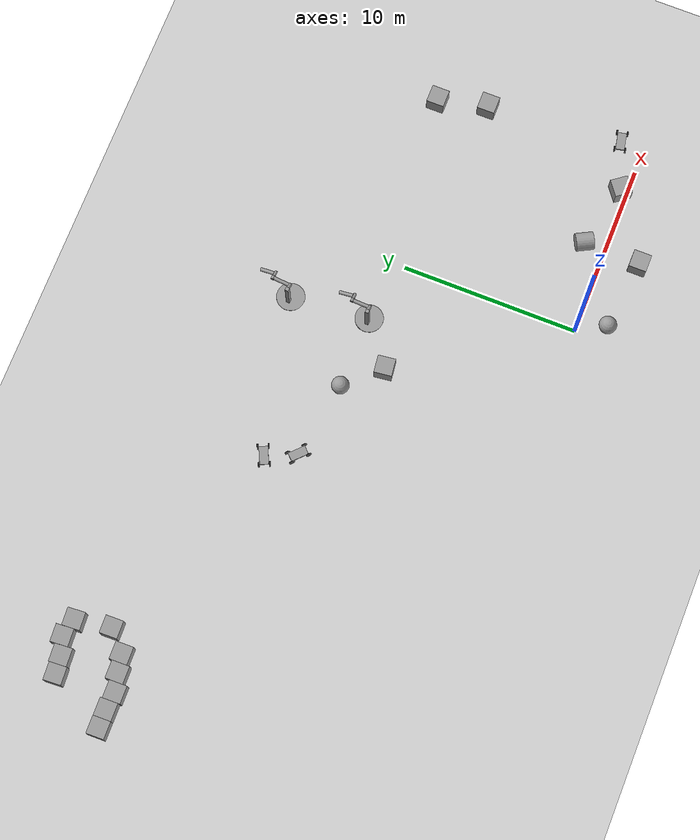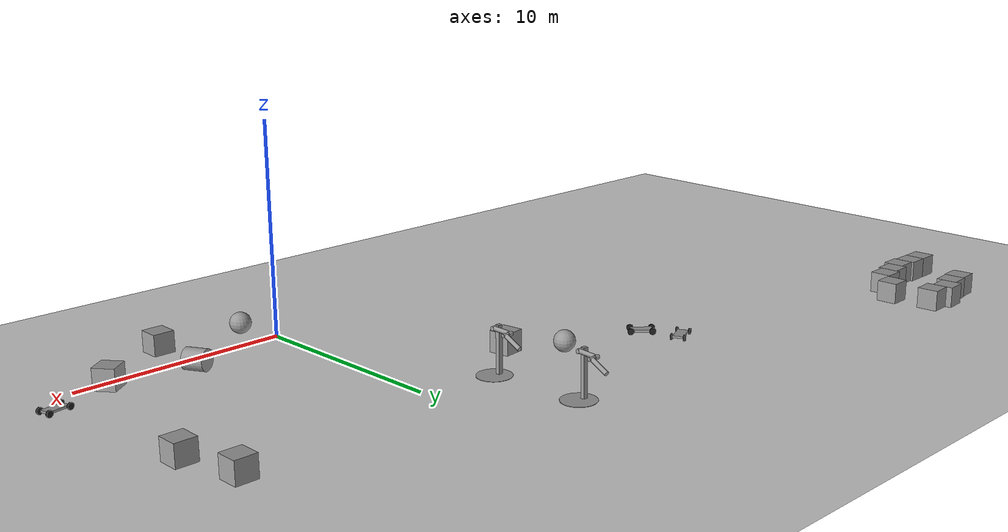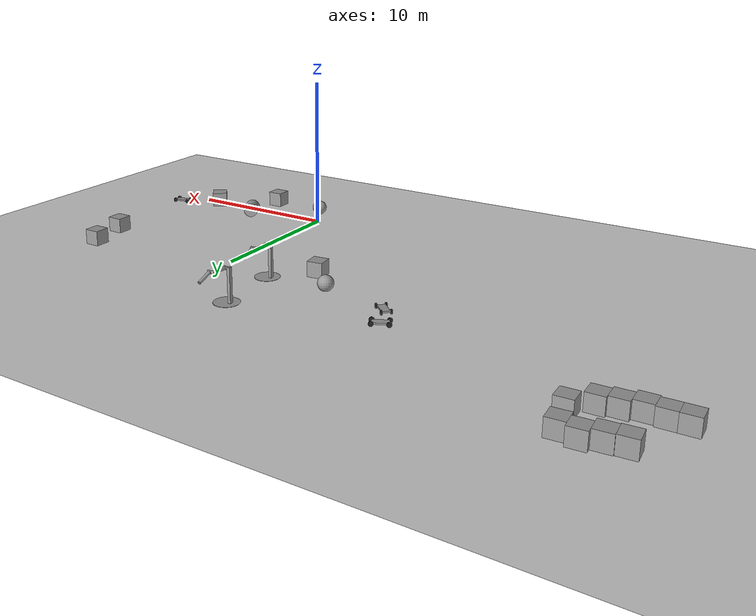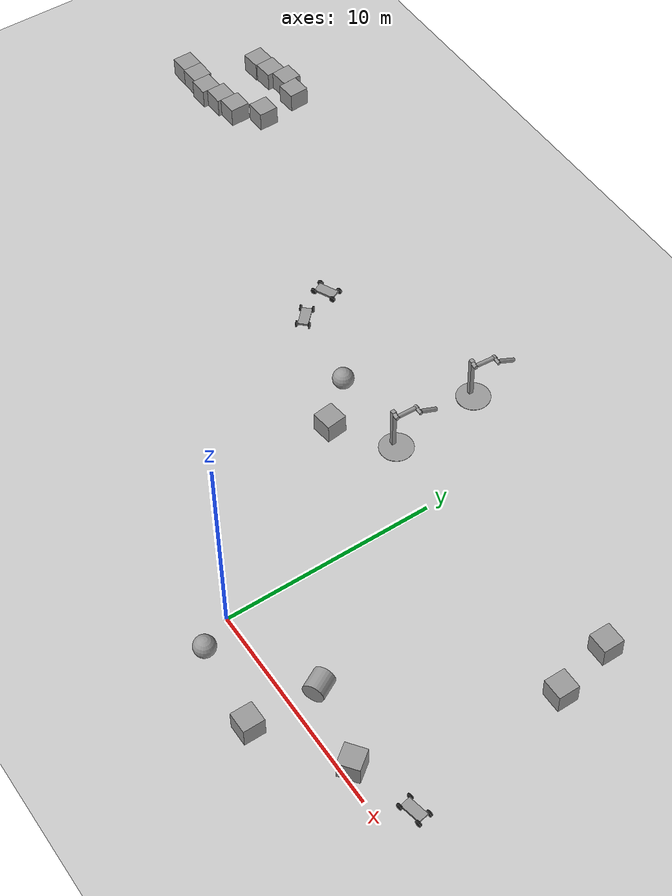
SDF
<sdf version="1.7">
 <world name="default">
  <model name="ground_plane">
   <static>1</static>
   <link name="link">
    <collision name="collision">
     <geometry><plane><normal>0 0 1</normal><size>100 100</size></plane></geometry>
     <surface><friction><ode><mu>100</mu><mu2>50</mu2></ode></friction></surface>
    </collision>
    <visual name="visual">
     <cast_shadows>0</cast_shadows>
     <geometry><plane><normal>0 0 1</normal><size>100 100</size></plane></geometry>
     <material>
      <script><uri>file://media/materials/scripts/gazebo.material</uri><name>Gazebo/Grey</name></script>
     </material>
    </visual>
   </link>
  </model>
  <model name="unit_box">
   <pose>8.58499 0.438001 0.5 0 -0 0.641361</pose>
   <link name="link">
    <inertial>
     <mass>1</mass>
     <inertia>
      <ixx>0.166667</ixx>
      <ixy>0</ixy>
      <ixz>0</ixz>
      <iyy>0.166667</iyy>
      <iyz>0</iyz>
      <izz>0.166667</izz>
     </inertia>
    </inertial>
    <collision name="collision"><geometry><box><size>1 1 1</size></box></geometry></collision>
    <visual name="visual">
     <geometry><box><size>1 1 1</size></box></geometry>
     <material>
      <script><name>Gazebo/Grey</name><uri>file://media/materials/scripts/gazebo.material</uri></script>
     </material>
    </visual>
   </link>
  </model>
  <model name="unit_box_0">
   <pose>4.85833 -1.98403 0.499995 0 -1e-05 0.000539</pose>
   <link name="link">
    <inertial>
     <mass>1</mass>
     <inertia>
      <ixx>0.166667</ixx>
      <ixy>0</ixy>
      <ixz>0</ixz>
      <iyy>0.166667</iyy>
      <iyz>0</iyz>
      <izz>0.166667</izz>
     </inertia>
    </inertial>
    <collision name="collision"><geometry><box><size>1 1 1</size></box></geometry></collision>
    <visual name="visual">
     <geometry><box><size>1 1 1</size></box></geometry>
     <material>
      <script><name>Gazebo/Grey</name><uri>file://media/materials/scripts/gazebo.material</uri></script>
     </material>
    </visual>
   </link>
  </model>
  <model name="unit_cylinder">
   <pose>4.95476 1.27157 0.499996 -1.5708 0.000138 0.48701</pose>
   <link name="link">
    <inertial>
     <mass>1</mass>
     <inertia><ixx>0.145833</ixx><ixy>0</ixy><ixz>0</ixz><iyy>0.145833</iyy><iyz>0</iyz><izz>0.125</izz></inertia>
    </inertial>
    <collision name="collision">
     <geometry><cylinder><radius>0.5</radius><length>1</length></cylinder></geometry>
    </collision>
    <visual name="visual">
     <geometry><cylinder><radius>0.5</radius><length>1</length></cylinder></geometry>
     <material>
      <script><name>Gazebo/Grey</name><uri>file://media/materials/scripts/gazebo.material</uri></script>
     </material>
    </visual>
   </link>
  </model>
  <model name="unit_sphere">
   <pose>0.887488 -1.57296 0.5 0 -0 0</pose>
   <link name="link">
    <inertial>
     <mass>1</mass>
     <inertia><ixx>0.1</ixx><ixy>0</ixy><ixz>0</ixz><iyy>0.1</iyy><iyz>0</iyz><izz>0.1</izz></inertia>
    </inertial>
    <collision name="collision"><geometry><sphere><radius>0.5</radius></sphere></geometry></collision>
    <visual name="visual">
     <geometry><sphere><radius>0.5</radius></sphere></geometry>
     <material>
      <script><name>Gazebo/Grey</name><uri>file://media/materials/scripts/gazebo.material</uri></script>
     </material>
    </visual>
   </link>
  </model>
  <model name="cart_front_steer">
   <link name="chassis">
    <pose>0 0 0.15 0 -0 0</pose>
    <inertial>
     <pose>0.1 0 0 0 -0 0</pose>
     <mass>10</mass>
     <inertia>
      <ixx>0.216667</ixx>
      <iyy>0.841667</iyy>
      <izz>1.04167</izz>
      <ixy>0</ixy>
      <ixz>0</ixz>
      <iyz>0</iyz>
     </inertia>
    </inertial>
    <collision name="collision"><geometry><box><size>1 0.5 0.1</size></box></geometry></collision>
    <visual name="visual">
     <geometry><box><size>1 0.5 0.1</size></box></geometry>
     <material>
      <script><uri>file://media/materials/scripts/gazebo.material</uri><name>Gazebo/Grey</name></script>
     </material>
    </visual>
   </link>
   <link name="wheel_front_left">
    <pose>0.5 0.298 0.15 -1.5708 -0.087266 0</pose>
    <inertial>
     <mass>0.5</mass>
     <inertia>
      <ixx>0.00307917</ixx>
      <iyy>0.00307917</iyy>
      <izz>0.005625</izz>
      <ixy>0</ixy>
      <ixz>0</ixz>
      <iyz>0</iyz>
     </inertia>
    </inertial>
    <collision name="collision">
     <geometry><cylinder><radius>0.15</radius><length>0.08</length></cylinder></geometry>
    </collision>
    <visual name="visual">
     <geometry><cylinder><radius>0.15</radius><length>0.08</length></cylinder></geometry>
     <material>
      <script><uri>file://media/materials/scripts/gazebo.material</uri><name>Gazebo/Black</name></script>
     </material>
    </visual>
   </link>
   <joint name="wheel_front_left_steer_spin" type="universal">
    <parent>chassis</parent>
    <child>wheel_front_left</child>
    <axis>
     <xyz>0 -1 0</xyz>
     <limit><lower>-0.610865</lower><upper>0.610865</upper></limit>
     <dynamics><spring_reference>0</spring_reference><spring_stiffness>0</spring_stiffness></dynamics>
    </axis>
    <axis2>
     <xyz>0 0 1</xyz>
     <limit><upper>1e+16</upper><lower>-1e+16</lower></limit>
     <dynamics><spring_reference>0</spring_reference><spring_stiffness>0</spring_stiffness></dynamics>
    </axis2>
   </joint>
   <link name="wheel_front_right">
    <pose>0.5 -0.298 0.15 -1.5708 -0.087266 0</pose>
    <inertial>
     <mass>0.5</mass>
     <inertia>
      <ixx>0.00307917</ixx>
      <iyy>0.00307917</iyy>
      <izz>0.005625</izz>
      <ixy>0</ixy>
      <ixz>0</ixz>
      <iyz>0</iyz>
     </inertia>
    </inertial>
    <collision name="collision">
     <geometry><cylinder><radius>0.15</radius><length>0.08</length></cylinder></geometry>
    </collision>
    <visual name="visual">
     <geometry><cylinder><radius>0.15</radius><length>0.08</length></cylinder></geometry>
     <material>
      <script><uri>file://media/materials/scripts/gazebo.material</uri><name>Gazebo/Black</name></script>
     </material>
    </visual>
   </link>
   <joint name="wheel_front_right_steer_spin" type="universal">
    <parent>chassis</parent>
    <child>wheel_front_right</child>
    <axis>
     <xyz>0 -1 0</xyz>
     <limit><lower>-0.610865</lower><upper>0.610865</upper></limit>
     <dynamics><spring_reference>0</spring_reference><spring_stiffness>0</spring_stiffness></dynamics>
    </axis>
    <axis2>
     <xyz>0 0 1</xyz>
     <limit><upper>1e+16</upper><lower>-1e+16</lower></limit>
     <dynamics><spring_reference>0</spring_reference><spring_stiffness>0</spring_stiffness></dynamics>
    </axis2>
   </joint>
   <link name="wheel_rear_left">
    <pose>-0.5 0.298 0.15 -1.5708 0 0</pose>
    <inertial>
     <mass>0.5</mass>
     <inertia>
      <ixx>0.00307917</ixx>
      <iyy>0.00307917</iyy>
      <izz>0.005625</izz>
      <ixy>0</ixy>
      <ixz>0</ixz>
      <iyz>0</iyz>
     </inertia>
    </inertial>
    <collision name="collision">
     <geometry><cylinder><radius>0.15</radius><length>0.08</length></cylinder></geometry>
    </collision>
    <visual name="visual">
     <geometry><cylinder><radius>0.15</radius><length>0.08</length></cylinder></geometry>
     <material>
      <script><uri>file://media/materials/scripts/gazebo.material</uri><name>Gazebo/Black</name></script>
     </material>
    </visual>
   </link>
   <joint name="wheel_rear_left_spin" type="revolute">
    <parent>chassis</parent>
    <child>wheel_rear_left</child>
    <axis>
     <xyz>0 0 1</xyz>
     <limit><lower>-1e+16</lower><upper>1e+16</upper></limit>
     <dynamics><spring_reference>0</spring_reference><spring_stiffness>0</spring_stiffness></dynamics>
    </axis>
   </joint>
   <link name="wheel_rear_right">
    <pose>-0.5 -0.298 0.15 -1.5708 0 0</pose>
    <inertial>
     <mass>0.5</mass>
     <inertia>
      <ixx>0.00307917</ixx>
      <iyy>0.00307917</iyy>
      <izz>0.005625</izz>
      <ixy>0</ixy>
      <ixz>0</ixz>
      <iyz>0</iyz>
     </inertia>
    </inertial>
    <collision name="collision">
     <geometry><cylinder><radius>0.15</radius><length>0.08</length></cylinder></geometry>
    </collision>
    <visual name="visual">
     <geometry><cylinder><radius>0.15</radius><length>0.08</length></cylinder></geometry>
     <material>
      <script><uri>file://media/materials/scripts/gazebo.material</uri><name>Gazebo/Black</name></script>
     </material>
    </visual>
   </link>
   <joint name="wheel_rear_right_spin" type="revolute">
    <parent>chassis</parent>
    <child>wheel_rear_right</child>
    <axis>
     <xyz>0 0 1</xyz>
     <limit><lower>-1e+16</lower><upper>1e+16</upper></limit>
     <dynamics><spring_reference>0</spring_reference><spring_stiffness>0</spring_stiffness></dynamics>
    </axis>
   </joint>
   <pose>11.4248 1.37036 -2e-06 -1.6e-05 -1e-06 0.198064</pose>
  </model>
  <model name="double_pendulum_with_base_2">
   <link name="base">
    <inertial>
     <mass>100</mass>
     <inertia><ixx>1</ixx><ixy>0</ixy><ixz>0</ixz><iyy>1</iyy><iyz>0</iyz><izz>1</izz></inertia>
    </inertial>
    <visual name="vis_plate_on_ground">
     <pose>0 0 0.01 0 -0 0</pose>
     <geometry><cylinder><radius>0.8</radius><length>0.02</length></cylinder></geometry>
     <material>
      <script><uri>file://media/materials/scripts/gazebo.material</uri><name>Gazebo/Grey</name></script>
     </material>
    </visual>
    <visual name="vis_pole">
     <pose>-0.275 0 1.1 0 -0 0</pose>
     <geometry><box><size>0.2 0.2 2.2</size></box></geometry>
     <material>
      <script><uri>file://media/materials/scripts/gazebo.material</uri><name>Gazebo/Grey</name></script>
     </material>
    </visual>
    <collision name="col_plate_on_ground">
     <pose>0 0 0.01 0 -0 0</pose>
     <geometry><cylinder><radius>0.8</radius><length>0.02</length></cylinder></geometry>
    </collision>
    <collision name="col_pole">
     <pose>-0.275 0 1.1 0 -0 0</pose>
     <geometry><box><size>0.2 0.2 2.2</size></box></geometry>
    </collision>
   </link>
   <link name="upper_link">
    <pose>0 0 2.1 -1.5708 0 0</pose>
    <inertial>
     <pose>0 0 0.5 0 -0 0</pose>
     <inertia><ixx>1</ixx><ixy>0</ixy><ixz>0</ixz><iyy>1</iyy><iyz>0</iyz><izz>1</izz></inertia>
     <mass>1</mass>
    </inertial>
    <visual name="vis_upper_joint">
     <pose>-0.05 0 0 3.14159 1.57079 3.14159</pose>
     <geometry><cylinder><radius>0.1</radius><length>0.3</length></cylinder></geometry>
     <material>
      <script><uri>file://media/materials/scripts/gazebo.material</uri><name>Gazebo/Grey</name></script>
     </material>
    </visual>
    <visual name="vis_lower_joint">
     <pose>0 0 1 3.14159 1.57079 3.14159</pose>
     <geometry><cylinder><radius>0.1</radius><length>0.2</length></cylinder></geometry>
     <material>
      <script><uri>file://media/materials/scripts/gazebo.material</uri><name>Gazebo/Grey</name></script>
     </material>
    </visual>
    <visual name="vis_cylinder">
     <pose>0 0 0.5 0 -0 0</pose>
     <geometry><cylinder><radius>0.1</radius><length>0.9</length></cylinder></geometry>
     <material>
      <script><uri>file://media/materials/scripts/gazebo.material</uri><name>Gazebo/Grey</name></script>
     </material>
    </visual>
    <collision name="col_upper_joint">
     <pose>-0.05 0 0 3.14159 1.57079 3.14159</pose>
     <geometry><cylinder><radius>0.1</radius><length>0.3</length></cylinder></geometry>
    </collision>
    <collision name="col_lower_joint">
     <pose>0 0 1 3.14159 1.57079 3.14159</pose>
     <geometry><cylinder><radius>0.1</radius><length>0.2</length></cylinder></geometry>
    </collision>
    <collision name="col_cylinder">
     <pose>0 0 0.5 0 -0 0</pose>
     <geometry><cylinder><radius>0.1</radius><length>0.9</length></cylinder></geometry>
    </collision>
   </link>
   <link name="lower_link">
    <pose>0.25 1 2.1 -2 0 0</pose>
    <inertial>
     <pose>0 0 0.5 0 -0 0</pose>
     <inertia><ixx>1</ixx><ixy>0</ixy><ixz>0</ixz><iyy>1</iyy><iyz>0</iyz><izz>1</izz></inertia>
     <mass>1</mass>
    </inertial>
    <visual name="vis_lower_joint">
     <pose>0 0 0 3.14159 1.57079 3.14159</pose>
     <geometry><cylinder><radius>0.08</radius><length>0.3</length></cylinder></geometry>
     <material>
      <script><uri>file://media/materials/scripts/gazebo.material</uri><name>Gazebo/Grey</name></script>
     </material>
    </visual>
    <visual name="vis_cylinder">
     <pose>0 0 0.5 0 -0 0</pose>
     <geometry><cylinder><radius>0.1</radius><length>0.9</length></cylinder></geometry>
     <material>
      <script><uri>file://media/materials/scripts/gazebo.material</uri><name>Gazebo/Grey</name></script>
     </material>
    </visual>
    <collision name="col_lower_joint">
     <pose>0 0 0 3.14159 1.57079 3.14159</pose>
     <geometry><cylinder><radius>0.08</radius><length>0.3</length></cylinder></geometry>
    </collision>
    <collision name="col_cylinder">
     <pose>0 0 0.5 0 -0 0</pose>
     <geometry><cylinder><radius>0.1</radius><length>0.9</length></cylinder></geometry>
    </collision>
   </link>
   <joint name="upper_joint" type="revolute">
    <parent>base</parent>
    <child>upper_link</child>
    <axis>
     <xyz>1 0 0</xyz>
     <limit><lower>-1e+16</lower><upper>1e+16</upper></limit>
     <dynamics><spring_reference>0</spring_reference><spring_stiffness>0</spring_stiffness></dynamics>
    </axis>
   </joint>
   <joint name="lower_joint" type="revolute">
    <parent>upper_link</parent>
    <child>lower_link</child>
    <axis>
     <xyz>1 0 0</xyz>
     <limit><lower>-1e+16</lower><upper>1e+16</upper></limit>
     <dynamics><spring_reference>0</spring_reference><spring_stiffness>0</spring_stiffness></dynamics>
    </axis>
   </joint>
   <pose>-3.84296 15.2744 -0 0 1e-06 -0.077361</pose>
  </model>
  <model name="double_pendulum_with_base_3">
   <link name="base">
    <inertial>
     <mass>100</mass>
     <inertia><ixx>1</ixx><ixy>0</ixy><ixz>0</ixz><iyy>1</iyy><iyz>0</iyz><izz>1</izz></inertia>
    </inertial>
    <visual name="vis_plate_on_ground">
     <pose>0 0 0.01 0 -0 0</pose>
     <geometry><cylinder><radius>0.8</radius><length>0.02</length></cylinder></geometry>
     <material>
      <script><uri>file://media/materials/scripts/gazebo.material</uri><name>Gazebo/Grey</name></script>
     </material>
    </visual>
    <visual name="vis_pole">
     <pose>-0.275 0 1.1 0 -0 0</pose>
     <geometry><box><size>0.2 0.2 2.2</size></box></geometry>
     <material>
      <script><uri>file://media/materials/scripts/gazebo.material</uri><name>Gazebo/Grey</name></script>
     </material>
    </visual>
    <collision name="col_plate_on_ground">
     <pose>0 0 0.01 0 -0 0</pose>
     <geometry><cylinder><radius>0.8</radius><length>0.02</length></cylinder></geometry>
    </collision>
    <collision name="col_pole">
     <pose>-0.275 0 1.1 0 -0 0</pose>
     <geometry><box><size>0.2 0.2 2.2</size></box></geometry>
    </collision>
   </link>
   <link name="upper_link">
    <pose>0 0 2.1 -1.5708 0 0</pose>
    <inertial>
     <pose>0 0 0.5 0 -0 0</pose>
     <inertia><ixx>1</ixx><ixy>0</ixy><ixz>0</ixz><iyy>1</iyy><iyz>0</iyz><izz>1</izz></inertia>
     <mass>1</mass>
    </inertial>
    <visual name="vis_upper_joint">
     <pose>-0.05 0 0 3.14159 1.57079 3.14159</pose>
     <geometry><cylinder><radius>0.1</radius><length>0.3</length></cylinder></geometry>
     <material>
      <script><uri>file://media/materials/scripts/gazebo.material</uri><name>Gazebo/Grey</name></script>
     </material>
    </visual>
    <visual name="vis_lower_joint">
     <pose>0 0 1 3.14159 1.57079 3.14159</pose>
     <geometry><cylinder><radius>0.1</radius><length>0.2</length></cylinder></geometry>
     <material>
      <script><uri>file://media/materials/scripts/gazebo.material</uri><name>Gazebo/Grey</name></script>
     </material>
    </visual>
    <visual name="vis_cylinder">
     <pose>0 0 0.5 0 -0 0</pose>
     <geometry><cylinder><radius>0.1</radius><length>0.9</length></cylinder></geometry>
     <material>
      <script><uri>file://media/materials/scripts/gazebo.material</uri><name>Gazebo/Grey</name></script>
     </material>
    </visual>
    <collision name="col_upper_joint">
     <pose>-0.05 0 0 3.14159 1.57079 3.14159</pose>
     <geometry><cylinder><radius>0.1</radius><length>0.3</length></cylinder></geometry>
    </collision>
    <collision name="col_lower_joint">
     <pose>0 0 1 3.14159 1.57079 3.14159</pose>
     <geometry><cylinder><radius>0.1</radius><length>0.2</length></cylinder></geometry>
    </collision>
    <collision name="col_cylinder">
     <pose>0 0 0.5 0 -0 0</pose>
     <geometry><cylinder><radius>0.1</radius><length>0.9</length></cylinder></geometry>
    </collision>
   </link>
   <link name="lower_link">
    <pose>0.25 1 2.1 -2 0 0</pose>
    <inertial>
     <pose>0 0 0.5 0 -0 0</pose>
     <inertia><ixx>1</ixx><ixy>0</ixy><ixz>0</ixz><iyy>1</iyy><iyz>0</iyz><izz>1</izz></inertia>
     <mass>1</mass>
    </inertial>
    <visual name="vis_lower_joint">
     <pose>0 0 0 3.14159 1.57079 3.14159</pose>
     <geometry><cylinder><radius>0.08</radius><length>0.3</length></cylinder></geometry>
     <material>
      <script><uri>file://media/materials/scripts/gazebo.material</uri><name>Gazebo/Grey</name></script>
     </material>
    </visual>
    <visual name="vis_cylinder">
     <pose>0 0 0.5 0 -0 0</pose>
     <geometry><cylinder><radius>0.1</radius><length>0.9</length></cylinder></geometry>
     <material>
      <script><uri>file://media/materials/scripts/gazebo.material</uri><name>Gazebo/Grey</name></script>
     </material>
    </visual>
    <collision name="col_lower_joint">
     <pose>0 0 0 3.14159 1.57079 3.14159</pose>
     <geometry><cylinder><radius>0.08</radius><length>0.3</length></cylinder></geometry>
    </collision>
    <collision name="col_cylinder">
     <pose>0 0 0.5 0 -0 0</pose>
     <geometry><cylinder><radius>0.1</radius><length>0.9</length></cylinder></geometry>
    </collision>
   </link>
   <joint name="upper_joint" type="revolute">
    <parent>base</parent>
    <child>upper_link</child>
    <axis>
     <xyz>1 0 0</xyz>
     <limit><lower>-1e+16</lower><upper>1e+16</upper></limit>
     <dynamics><spring_reference>0</spring_reference><spring_stiffness>0</spring_stiffness></dynamics>
    </axis>
   </joint>
   <joint name="lower_joint" type="revolute">
    <parent>upper_link</parent>
    <child>lower_link</child>
    <axis>
     <xyz>1 0 0</xyz>
     <limit><lower>-1e+16</lower><upper>1e+16</upper></limit>
     <dynamics><spring_reference>0</spring_reference><spring_stiffness>0</spring_stiffness></dynamics>
    </axis>
   </joint>
   <pose>-3.41869 10.7915 0 0 0 -0.0373</pose>
  </model>
  <model name="unit_box_2">
   <pose>-5.87193 8.92366 0.499995 -0 1e-05 0.122908</pose>
   <link name="link">
    <inertial>
     <mass>1</mass>
     <inertia>
      <ixx>0.166667</ixx>
      <ixy>0</ixy>
      <ixz>0</ixz>
      <iyy>0.166667</iyy>
      <iyz>0</iyz>
      <izz>0.166667</izz>
     </inertia>
    </inertial>
    <collision name="collision"><geometry><box><size>1 1 1</size></box></geometry></collision>
    <visual name="visual">
     <geometry><box><size>1 1 1</size></box></geometry>
     <material>
      <script><name>Gazebo/Grey</name><uri>file://media/materials/scripts/gazebo.material</uri></script>
     </material>
    </visual>
   </link>
  </model>
  <model name="unit_sphere_0">
   <pose>-7.65578 10.8174 0.5 0 -0 0</pose>
   <link name="link">
    <inertial>
     <mass>1</mass>
     <inertia><ixx>0.1</ixx><ixy>0</ixy><ixz>0</ixz><iyy>0.1</iyy><iyz>0</iyz><izz>0.1</izz></inertia>
    </inertial>
    <collision name="collision"><geometry><sphere><radius>0.5</radius></sphere></geometry></collision>
    <visual name="visual">
     <geometry><sphere><radius>0.5</radius></sphere></geometry>
     <material>
      <script><name>Gazebo/Grey</name><uri>file://media/materials/scripts/gazebo.material</uri></script>
     </material>
    </visual>
   </link>
  </model>
  <model name="unit_box_4">
   <pose>-29.466 15.6921 0.499995 -1e-05 -0 0.020412</pose>
   <link name="link">
    <inertial>
     <mass>1</mass>
     <inertia>
      <ixx>0.166667</ixx>
      <ixy>0</ixy>
      <ixz>0</ixz>
      <iyy>0.166667</iyy>
      <iyz>0</iyz>
      <izz>0.166667</izz>
     </inertia>
    </inertial>
    <collision name="collision"><geometry><box><size>1 1 1</size></box></geometry></collision>
    <visual name="visual">
     <geometry><box><size>1 1 1</size></box></geometry>
     <material>
      <script><name>Gazebo/Grey</name><uri>file://media/materials/scripts/gazebo.material</uri></script>
     </material>
    </visual>
   </link>
  </model>
  <model name="unit_box_5">
   <pose>-28.4661 15.7075 0.5 0 -0 0.020412</pose>
   <link name="link">
    <inertial>
     <mass>1</mass>
     <inertia>
      <ixx>0.166667</ixx>
      <ixy>0</ixy>
      <ixz>0</ixz>
      <iyy>0.166667</iyy>
      <iyz>0</iyz>
      <izz>0.166667</izz>
     </inertia>
    </inertial>
    <collision name="collision"><geometry><box><size>1 1 1</size></box></geometry></collision>
    <visual name="visual">
     <geometry><box><size>1 1 1</size></box></geometry>
     <material>
      <script><name>Gazebo/Grey</name><uri>file://media/materials/scripts/gazebo.material</uri></script>
     </material>
    </visual>
   </link>
  </model>
  <model name="unit_box_6">
   <pose>-27.4639 15.6221 0.5 0 -0 0.020525</pose>
   <link name="link">
    <inertial>
     <mass>1</mass>
     <inertia>
      <ixx>0.166667</ixx>
      <ixy>0</ixy>
      <ixz>0</ixz>
      <iyy>0.166667</iyy>
      <iyz>0</iyz>
      <izz>0.166667</izz>
     </inertia>
    </inertial>
    <collision name="collision"><geometry><box><size>1 1 1</size></box></geometry></collision>
    <visual name="visual">
     <geometry><box><size>1 1 1</size></box></geometry>
     <material>
      <script><name>Gazebo/Grey</name><uri>file://media/materials/scripts/gazebo.material</uri></script>
     </material>
    </visual>
   </link>
  </model>
  <model name="unit_box_7">
   <pose>-24.3975 17.1188 0.5 0 -0 0.024781</pose>
   <link name="link">
    <inertial>
     <mass>1</mass>
     <inertia>
      <ixx>0.166667</ixx>
      <ixy>0</ixy>
      <ixz>0</ixz>
      <iyy>0.166667</iyy>
      <iyz>0</iyz>
      <izz>0.166667</izz>
     </inertia>
    </inertial>
    <collision name="collision"><geometry><box><size>1 1 1</size></box></geometry></collision>
    <visual name="visual">
     <geometry><box><size>1 1 1</size></box></geometry>
     <material>
      <script><name>Gazebo/Grey</name><uri>file://media/materials/scripts/gazebo.material</uri></script>
     </material>
    </visual>
   </link>
  </model>
  <model name="unit_box_8">
   <pose>-25.4725 16.0922 0.5 0 -0 0.021424</pose>
   <link name="link">
    <inertial>
     <mass>1</mass>
     <inertia>
      <ixx>0.166667</ixx>
      <ixy>0</ixy>
      <ixz>0</ixz>
      <iyy>0.166667</iyy>
      <iyz>0</iyz>
      <izz>0.166667</izz>
     </inertia>
    </inertial>
    <collision name="collision"><geometry><box><size>1 1 1</size></box></geometry></collision>
    <visual name="visual">
     <geometry><box><size>1 1 1</size></box></geometry>
     <material>
      <script><name>Gazebo/Grey</name><uri>file://media/materials/scripts/gazebo.material</uri></script>
     </material>
    </visual>
   </link>
  </model>
  <model name="unit_box_9">
   <pose>-26.4692 15.8946 0.5 0 -0 0.020705</pose>
   <link name="link">
    <inertial>
     <mass>1</mass>
     <inertia>
      <ixx>0.166667</ixx>
      <ixy>0</ixy>
      <ixz>0</ixz>
      <iyy>0.166667</iyy>
      <iyz>0</iyz>
      <izz>0.166667</izz>
     </inertia>
    </inertial>
    <collision name="collision"><geometry><box><size>1 1 1</size></box></geometry></collision>
    <visual name="visual">
     <geometry><box><size>1 1 1</size></box></geometry>
     <material>
      <script><name>Gazebo/Grey</name><uri>file://media/materials/scripts/gazebo.material</uri></script>
     </material>
    </visual>
   </link>
  </model>
  <model name="unit_box_13">
   <pose>-27.7219 18.9013 0.5 0 -0 0.064363</pose>
   <link name="link">
    <inertial>
     <mass>1</mass>
     <inertia>
      <ixx>0.166667</ixx>
      <ixy>0</ixy>
      <ixz>0</ixz>
      <iyy>0.166667</iyy>
      <iyz>0</iyz>
      <izz>0.166667</izz>
     </inertia>
    </inertial>
    <collision name="collision"><geometry><box><size>1 1 1</size></box></geometry></collision>
    <visual name="visual">
     <geometry><box><size>1 1 1</size></box></geometry>
     <material>
      <script><name>Gazebo/Grey</name><uri>file://media/materials/scripts/gazebo.material</uri></script>
     </material>
    </visual>
   </link>
  </model>
  <model name="unit_box_14">
   <pose>-26.7267 19.0169 0.499995 0 1e-05 0.064981</pose>
   <link name="link">
    <inertial>
     <mass>1</mass>
     <inertia>
      <ixx>0.166667</ixx>
      <ixy>0</ixy>
      <ixz>0</ixz>
      <iyy>0.166667</iyy>
      <iyz>0</iyz>
      <izz>0.166667</izz>
     </inertia>
    </inertial>
    <collision name="collision"><geometry><box><size>1 1 1</size></box></geometry></collision>
    <visual name="visual">
     <geometry><box><size>1 1 1</size></box></geometry>
     <material>
      <script><name>Gazebo/Grey</name><uri>file://media/materials/scripts/gazebo.material</uri></script>
     </material>
    </visual>
   </link>
  </model>
  <model name="unit_box_15">
   <pose>-25.747 19.3641 0.5 0 -0 0.064685</pose>
   <link name="link">
    <inertial>
     <mass>1</mass>
     <inertia>
      <ixx>0.166667</ixx>
      <ixy>0</ixy>
      <ixz>0</ixz>
      <iyy>0.166667</iyy>
      <iyz>0</iyz>
      <izz>0.166667</izz>
     </inertia>
    </inertial>
    <collision name="collision"><geometry><box><size>1 1 1</size></box></geometry></collision>
    <visual name="visual">
     <geometry><box><size>1 1 1</size></box></geometry>
     <material>
      <script><name>Gazebo/Grey</name><uri>file://media/materials/scripts/gazebo.material</uri></script>
     </material>
    </visual>
   </link>
  </model>
  <model name="unit_box_16">
   <pose>-24.7292 19.1355 0.5 0 -0 0.060436</pose>
   <link name="link">
    <inertial>
     <mass>1</mass>
     <inertia>
      <ixx>0.166667</ixx>
      <ixy>0</ixy>
      <ixz>0</ixz>
      <iyy>0.166667</iyy>
      <iyz>0</iyz>
      <izz>0.166667</izz>
     </inertia>
    </inertial>
    <collision name="collision"><geometry><box><size>1 1 1</size></box></geometry></collision>
    <visual name="visual">
     <geometry><box><size>1 1 1</size></box></geometry>
     <material>
      <script><name>Gazebo/Grey</name><uri>file://media/materials/scripts/gazebo.material</uri></script>
     </material>
    </visual>
   </link>
  </model>
  <model name="cart_rigid_suspension">
   <link name="chassis">
    <pose>0 0 0.15 0 -0 0</pose>
    <inertial>
     <pose>0.1 0 0 0 -0 0</pose>
     <mass>10</mass>
     <inertia>
      <ixx>0.216667</ixx>
      <iyy>0.841667</iyy>
      <izz>1.04167</izz>
      <ixy>0</ixy>
      <ixz>0</ixz>
      <iyz>0</iyz>
     </inertia>
    </inertial>
    <collision name="collision"><geometry><box><size>1 0.5 0.1</size></box></geometry></collision>
    <visual name="visual">
     <geometry><box><size>1 0.5 0.1</size></box></geometry>
     <material>
      <script><uri>file://media/materials/scripts/gazebo.material</uri><name>Gazebo/Grey</name></script>
     </material>
    </visual>
   </link>
   <link name="wheel_front_left">
    <pose>0.5 0.298 0.15 -1.5708 0 0</pose>
    <inertial>
     <mass>0.5</mass>
     <inertia>
      <ixx>0.00307917</ixx>
      <iyy>0.00307917</iyy>
      <izz>0.005625</izz>
      <ixy>0</ixy>
      <ixz>0</ixz>
      <iyz>0</iyz>
     </inertia>
    </inertial>
    <collision name="collision">
     <geometry><cylinder><radius>0.15</radius><length>0.08</length></cylinder></geometry>
    </collision>
    <visual name="visual">
     <geometry><cylinder><radius>0.15</radius><length>0.08</length></cylinder></geometry>
     <material>
      <script><uri>file://media/materials/scripts/gazebo.material</uri><name>Gazebo/Black</name></script>
     </material>
    </visual>
   </link>
   <joint name="wheel_front_left_spin" type="revolute">
    <parent>chassis</parent>
    <child>wheel_front_left</child>
    <axis>
     <xyz>0 0 1</xyz>
     <limit><lower>-1e+16</lower><upper>1e+16</upper></limit>
     <dynamics><spring_reference>0</spring_reference><spring_stiffness>0</spring_stiffness></dynamics>
    </axis>
   </joint>
   <link name="wheel_front_right">
    <pose>0.5 -0.298 0.15 -1.5708 0 0</pose>
    <inertial>
     <mass>0.5</mass>
     <inertia>
      <ixx>0.00307917</ixx>
      <iyy>0.00307917</iyy>
      <izz>0.005625</izz>
      <ixy>0</ixy>
      <ixz>0</ixz>
      <iyz>0</iyz>
     </inertia>
    </inertial>
    <collision name="collision">
     <geometry><cylinder><radius>0.15</radius><length>0.08</length></cylinder></geometry>
    </collision>
    <visual name="visual">
     <geometry><cylinder><radius>0.15</radius><length>0.08</length></cylinder></geometry>
     <material>
      <script><uri>file://media/materials/scripts/gazebo.material</uri><name>Gazebo/Black</name></script>
     </material>
    </visual>
   </link>
   <joint name="wheel_front_right_spin" type="revolute">
    <parent>chassis</parent>
    <child>wheel_front_right</child>
    <axis>
     <xyz>0 0 1</xyz>
     <limit><lower>-1e+16</lower><upper>1e+16</upper></limit>
     <dynamics><spring_reference>0</spring_reference><spring_stiffness>0</spring_stiffness></dynamics>
    </axis>
   </joint>
   <link name="wheel_rear_left">
    <pose>-0.5 0.298 0.15 -1.5708 0 0</pose>
    <inertial>
     <mass>0.5</mass>
     <inertia>
      <ixx>0.00307917</ixx>
      <iyy>0.00307917</iyy>
      <izz>0.005625</izz>
      <ixy>0</ixy>
      <ixz>0</ixz>
      <iyz>0</iyz>
     </inertia>
    </inertial>
    <collision name="collision">
     <geometry><cylinder><radius>0.15</radius><length>0.08</length></cylinder></geometry>
    </collision>
    <visual name="visual">
     <geometry><cylinder><radius>0.15</radius><length>0.08</length></cylinder></geometry>
     <material>
      <script><uri>file://media/materials/scripts/gazebo.material</uri><name>Gazebo/Black</name></script>
     </material>
    </visual>
   </link>
   <joint name="wheel_rear_left_spin" type="revolute">
    <parent>chassis</parent>
    <child>wheel_rear_left</child>
    <axis>
     <xyz>0 0 1</xyz>
     <limit><lower>-1e+16</lower><upper>1e+16</upper></limit>
     <dynamics><spring_reference>0</spring_reference><spring_stiffness>0</spring_stiffness></dynamics>
    </axis>
   </joint>
   <link name="wheel_rear_right">
    <pose>-0.5 -0.298 0.15 -1.5708 0 0</pose>
    <inertial>
     <mass>0.5</mass>
     <inertia>
      <ixx>0.00307917</ixx>
      <iyy>0.00307917</iyy>
      <izz>0.005625</izz>
      <ixy>0</ixy>
      <ixz>0</ixz>
      <iyz>0</iyz>
     </inertia>
    </inertial>
    <collision name="collision">
     <geometry><cylinder><radius>0.15</radius><length>0.08</length></cylinder></geometry>
    </collision>
    <visual name="visual">
     <geometry><cylinder><radius>0.15</radius><length>0.08</length></cylinder></geometry>
     <material>
      <script><uri>file://media/materials/scripts/gazebo.material</uri><name>Gazebo/Black</name></script>
     </material>
    </visual>
   </link>
   <joint name="wheel_rear_right_spin" type="revolute">
    <parent>chassis</parent>
    <child>wheel_rear_right</child>
    <axis>
     <xyz>0 0 1</xyz>
     <limit><lower>-1e+16</lower><upper>1e+16</upper></limit>
     <dynamics><spring_reference>0</spring_reference><spring_stiffness>0</spring_stiffness></dynamics>
    </axis>
   </joint>
   <pose>-11.976 11.5605 0 0 -0 -0.765174</pose>
  </model>
  <model name="cart_front_steer_0">
   <link name="chassis">
    <pose>0 0 0.15 0 -0 0</pose>
    <inertial>
     <pose>0.1 0 0 0 -0 0</pose>
     <mass>10</mass>
     <inertia>
      <ixx>0.216667</ixx>
      <iyy>0.841667</iyy>
      <izz>1.04167</izz>
      <ixy>0</ixy>
      <ixz>0</ixz>
      <iyz>0</iyz>
     </inertia>
    </inertial>
    <collision name="collision"><geometry><box><size>1 0.5 0.1</size></box></geometry></collision>
    <visual name="visual">
     <geometry><box><size>1 0.5 0.1</size></box></geometry>
     <material>
      <script><uri>file://media/materials/scripts/gazebo.material</uri><name>Gazebo/Grey</name></script>
     </material>
    </visual>
   </link>
   <link name="wheel_front_left">
    <pose>0.5 0.298 0.15 -1.5708 -0.087266 0</pose>
    <inertial>
     <mass>0.5</mass>
     <inertia>
      <ixx>0.00307917</ixx>
      <iyy>0.00307917</iyy>
      <izz>0.005625</izz>
      <ixy>0</ixy>
      <ixz>0</ixz>
      <iyz>0</iyz>
     </inertia>
    </inertial>
    <collision name="collision">
     <geometry><cylinder><radius>0.15</radius><length>0.08</length></cylinder></geometry>
    </collision>
    <visual name="visual">
     <geometry><cylinder><radius>0.15</radius><length>0.08</length></cylinder></geometry>
     <material>
      <script><uri>file://media/materials/scripts/gazebo.material</uri><name>Gazebo/Black</name></script>
     </material>
    </visual>
   </link>
   <joint name="wheel_front_left_steer_spin" type="universal">
    <parent>chassis</parent>
    <child>wheel_front_left</child>
    <axis>
     <xyz>0 -1 0</xyz>
     <limit><lower>-0.610865</lower><upper>0.610865</upper></limit>
     <dynamics><spring_reference>0</spring_reference><spring_stiffness>0</spring_stiffness></dynamics>
    </axis>
    <axis2>
     <xyz>0 0 1</xyz>
     <limit><upper>1e+16</upper><lower>-1e+16</lower></limit>
     <dynamics><spring_reference>0</spring_reference><spring_stiffness>0</spring_stiffness></dynamics>
    </axis2>
   </joint>
   <link name="wheel_front_right">
    <pose>0.5 -0.298 0.15 -1.5708 -0.087266 0</pose>
    <inertial>
     <mass>0.5</mass>
     <inertia>
      <ixx>0.00307917</ixx>
      <iyy>0.00307917</iyy>
      <izz>0.005625</izz>
      <ixy>0</ixy>
      <ixz>0</ixz>
      <iyz>0</iyz>
     </inertia>
    </inertial>
    <collision name="collision">
     <geometry><cylinder><radius>0.15</radius><length>0.08</length></cylinder></geometry>
    </collision>
    <visual name="visual">
     <geometry><cylinder><radius>0.15</radius><length>0.08</length></cylinder></geometry>
     <material>
      <script><uri>file://media/materials/scripts/gazebo.material</uri><name>Gazebo/Black</name></script>
     </material>
    </visual>
   </link>
   <joint name="wheel_front_right_steer_spin" type="universal">
    <parent>chassis</parent>
    <child>wheel_front_right</child>
    <axis>
     <xyz>0 -1 0</xyz>
     <limit><lower>-0.610865</lower><upper>0.610865</upper></limit>
     <dynamics><spring_reference>0</spring_reference><spring_stiffness>0</spring_stiffness></dynamics>
    </axis>
    <axis2>
     <xyz>0 0 1</xyz>
     <limit><upper>1e+16</upper><lower>-1e+16</lower></limit>
     <dynamics><spring_reference>0</spring_reference><spring_stiffness>0</spring_stiffness></dynamics>
    </axis2>
   </joint>
   <link name="wheel_rear_left">
    <pose>-0.5 0.298 0.15 -1.5708 0 0</pose>
    <inertial>
     <mass>0.5</mass>
     <inertia>
      <ixx>0.00307917</ixx>
      <iyy>0.00307917</iyy>
      <izz>0.005625</izz>
      <ixy>0</ixy>
      <ixz>0</ixz>
      <iyz>0</iyz>
     </inertia>
    </inertial>
    <collision name="collision">
     <geometry><cylinder><radius>0.15</radius><length>0.08</length></cylinder></geometry>
    </collision>
    <visual name="visual">
     <geometry><cylinder><radius>0.15</radius><length>0.08</length></cylinder></geometry>
     <material>
      <script><uri>file://media/materials/scripts/gazebo.material</uri><name>Gazebo/Black</name></script>
     </material>
    </visual>
   </link>
   <joint name="wheel_rear_left_spin" type="revolute">
    <parent>chassis</parent>
    <child>wheel_rear_left</child>
    <axis>
     <xyz>0 0 1</xyz>
     <limit><lower>-1e+16</lower><upper>1e+16</upper></limit>
     <dynamics><spring_reference>0</spring_reference><spring_stiffness>0</spring_stiffness></dynamics>
    </axis>
   </joint>
   <link name="wheel_rear_right">
    <pose>-0.5 -0.298 0.15 -1.5708 0 0</pose>
    <inertial>
     <mass>0.5</mass>
     <inertia>
      <ixx>0.00307917</ixx>
      <iyy>0.00307917</iyy>
      <izz>0.005625</izz>
      <ixy>0</ixy>
      <ixz>0</ixz>
      <iyz>0</iyz>
     </inertia>
    </inertial>
    <collision name="collision">
     <geometry><cylinder><radius>0.15</radius><length>0.08</length></cylinder></geometry>
    </collision>
    <visual name="visual">
     <geometry><cylinder><radius>0.15</radius><length>0.08</length></cylinder></geometry>
     <material>
      <script><uri>file://media/materials/scripts/gazebo.material</uri><name>Gazebo/Black</name></script>
     </material>
    </visual>
   </link>
   <joint name="wheel_rear_right_spin" type="revolute">
    <parent>chassis</parent>
    <child>wheel_rear_right</child>
    <axis>
     <xyz>0 0 1</xyz>
     <limit><lower>-1e+16</lower><upper>1e+16</upper></limit>
     <dynamics><spring_reference>0</spring_reference><spring_stiffness>0</spring_stiffness></dynamics>
    </axis>
   </joint>
   <pose>-12.7491 13.257 0 0 1e-06 0.447337</pose>
  </model>
  <model name="unit_box_21">
   <pose>10.5539 9.06141 0.5 0 -0 0</pose>
   <link name="link">
    <inertial>
     <mass>1</mass>
     <inertia>
      <ixx>0.166667</ixx>
      <ixy>0</ixy>
      <ixz>0</ixz>
      <iyy>0.166667</iyy>
      <iyz>0</iyz>
      <izz>0.166667</izz>
     </inertia>
    </inertial>
    <collision name="collision"><geometry><box><size>1 1 1</size></box></geometry></collision>
    <visual name="visual">
     <geometry><box><size>1 1 1</size></box></geometry>
     <material>
      <script><name>Gazebo/Grey</name><uri>file://media/materials/scripts/gazebo.material</uri></script>
     </material>
    </visual>
   </link>
  </model>
  <model name="unit_box_23">
   <pose>9.88812 11.8477 0.5 0 -0 0</pose>
   <link name="link">
    <inertial>
     <mass>1</mass>
     <inertia>
      <ixx>0.166667</ixx>
      <ixy>0</ixy>
      <ixz>0</ixz>
      <iyy>0.166667</iyy>
      <iyz>0</iyz>
      <izz>0.166667</izz>
     </inertia>
    </inertial>
    <collision name="collision"><geometry><box><size>1 1 1</size></box></geometry></collision>
    <visual name="visual">
     <geometry><box><size>1 1 1</size></box></geometry>
     <material>
      <script><name>Gazebo/Grey</name><uri>file://media/materials/scripts/gazebo.material</uri></script>
     </material>
    </visual>
   </link>
  </model>
  <model name="camera">
   <link name="camera">
    <inertial>
     <mass>1e-05</mass>
     <inertia><ixx>1e-06</ixx><ixy>0</ixy><ixz>0</ixz><iyy>1e-06</iyy><iyz>0</iyz><izz>1e-06</izz></inertia>
    </inertial>
    <collision name="camera_collision"><geometry><box><size>0.001 0.001 0.001</size></box></geometry></collision>
    <visual name="camera_visual"><geometry><box><size>0.001 0.001 0.001</size></box></geometry></visual>
    <sensor name="camera" type="camera">
     <update_rate>15</update_rate>
     <camera name="head">
      <horizontal_fov>2</horizontal_fov>
      <image><width>320</width><height>180</height><format>R8G8B8</format></image>
      <clip><near>0.1</near><far>200</far></clip>
     </camera>
     <plugin name="camera_controller" filename="libgazebo_ros_camera.so">
      <alwaysOn>1</alwaysOn>
      <updateRate>0.0</updateRate>
      <cameraName>camera</cameraName>
      <imageTopicName>image</imageTopicName>
      <cameraInfoTopicName>camera_info</cameraInfoTopicName>
      <frameName>camera</frameName>
      <hackBaseline>0.0</hackBaseline>
      <distortionK1>0.0</distortionK1>
      <distortionK2>0.0</distortionK2>
      <distortionK3>0.0</distortionK3>
      <distortionT1>0.0</distortionT1>
      <distortionT2>0.0</distortionT2>
      <robotNamespace>/</robotNamespace>
     </plugin>
    </sensor>
   </link>
   <pose>0 0 0.749902 0 -0 0</pose>
  </model>
 </world>
</sdf>
